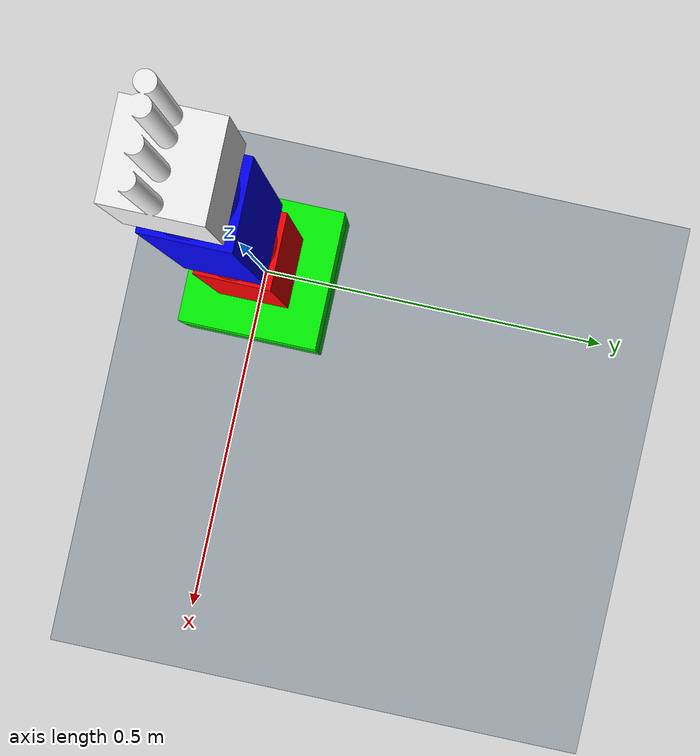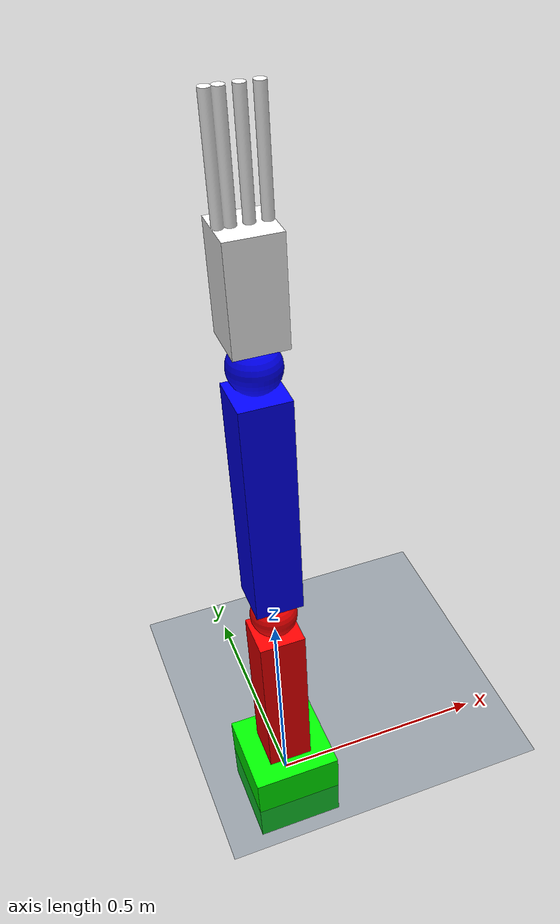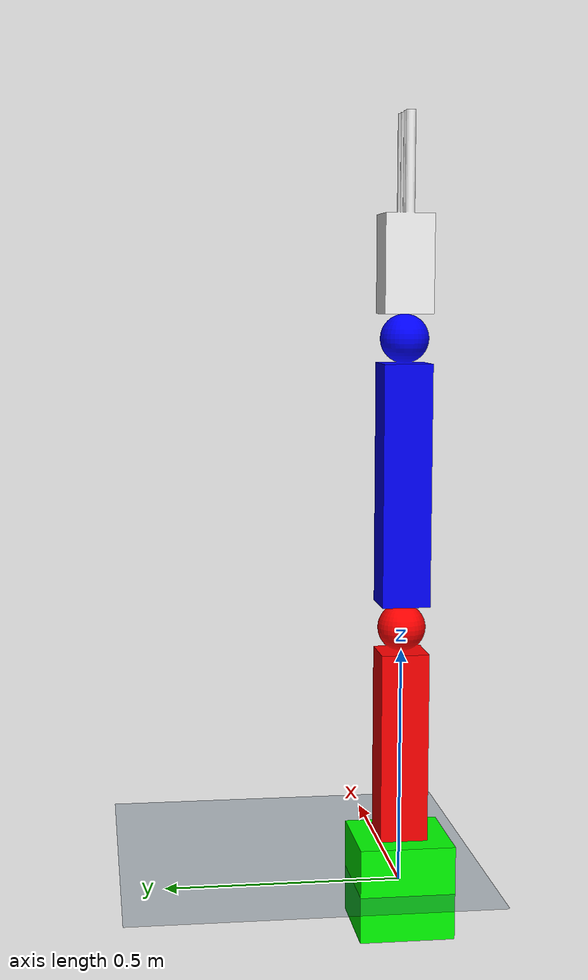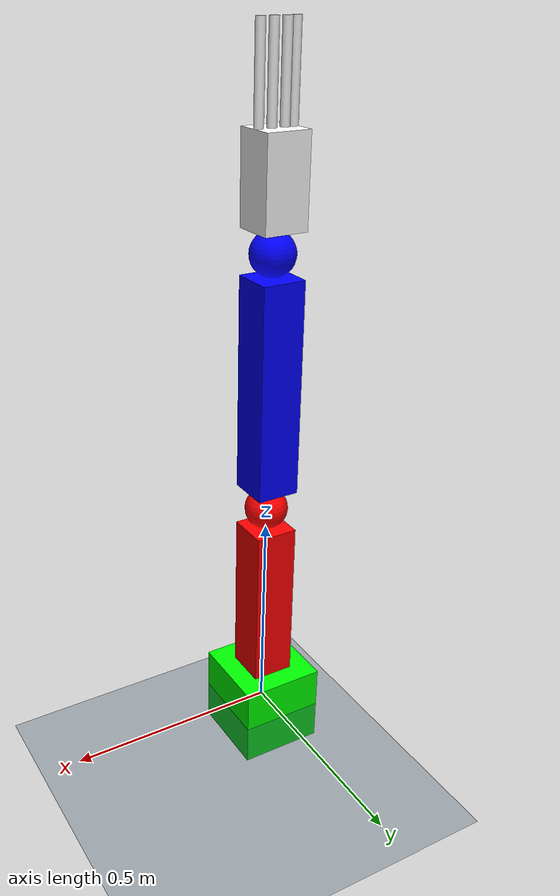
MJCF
<mujoco model="scene">
  <include file="pos_arm.xml"/>

  <visual>
   <headlight diffuse="0.6 0.6 0.6" ambient="0.3 0.3 0.3" specular="0 0 0"/>
   <rgba haze="0.15 0.25 0.35 1"/>
   <global azimuth="120" elevation="-20"/>
  </visual>

  <asset>
    <texture type="skybox" builtin="gradient" rgb1="0.3 0.5 0.7" rgb2="0 0 0" width="512" height="3072"/>
    <texture type="2d" name="groundplane" builtin="checker" mark="edge" rgb1="0.2 0.3 0.4" rgb2="0.1 0.2 0.3" markrgb="0.8 0.8 0.8" width="300" height="300"/>
    <material name="groundplane" texture="groundplane" texuniform="true" texrepeat="5 5" reflectance="0.2"/>
   </asset>

   <worldbody>
     <light pos="0 0 1.5" dir="0 0 -1" directional="true"/>
     <geom name="floor" size="0 0 0.05" type="plane" material="groundplane"/>
   </worldbody>
</mujoco>

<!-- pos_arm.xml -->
<mujoco model="two_link">
  <compiler angle="radian"/>
  <option collision="predefined"/>

  <asset>
    <mesh file="ball-joint.stl"/>
    <mesh file="hand.stl"/>
  </asset>
  <worldbody>
   <body name="base" pos="0 0 0.0">
     <geom name="base" type="box" size="0.1 0.1 0.1" mass="1" rgba="0 1 0 1"/>
     <body name="link1" pos="0 0 0.0">
       <geom name="link1" type="mesh" mesh="ball-joint" mass="1" rgba="1 0 0 1"/>
       <joint name="joint1" type="hinge" axis="1 0 0" limited="true" range="-1.57 1.57"/>
       <body name="link2" pos="0 0 0.6">
         <geom name="link2" type="mesh" mesh="ball-joint" mass="1" rgba="0 0 1 1"/>
         <joint name="joint2" type="hinge" axis="1 0 0" limited="true" range="-1.57 1.57"/>
         <body name="link3" pos="0 0 0.6">
           <geom name="link3" type="mesh" mesh="hand" mass="1" rgba="1 1 1 1"/>
           <joint name="joint3" type="hinge" axis="1 0 0" limited="true" range="-1.57 1.57"/>
         </body>
       </body>
     </body>
   </body>
 </worldbody>

   <actuator>
     <position name="joint1" joint="joint1" ctrllimited="true" ctrlrange="-100 100"/>
     <position name="joint2" joint="joint2" ctrllimited="true" ctrlrange="-100 100"/>
     <position name="joint3" joint="joint3" ctrllimited="true" ctrlrange="-100 100"/>
   </actuator>
</mujoco>
